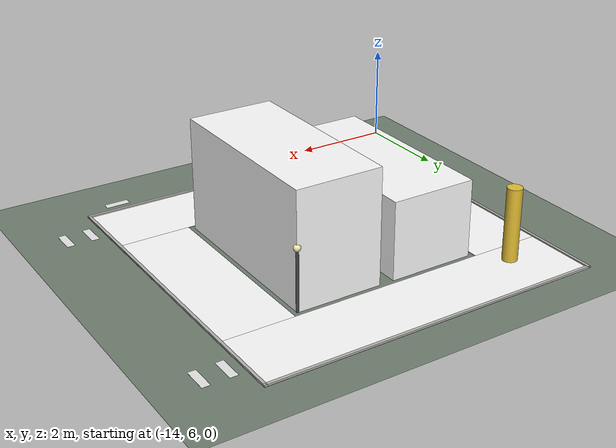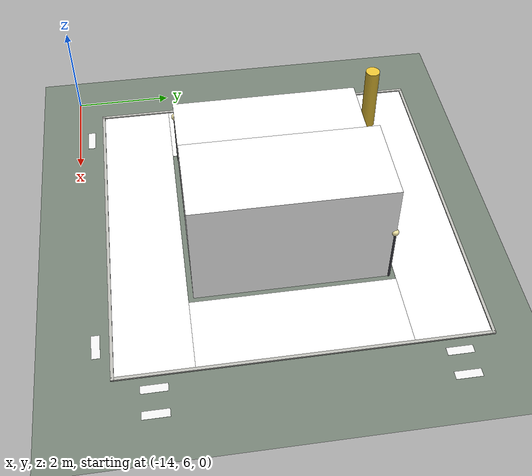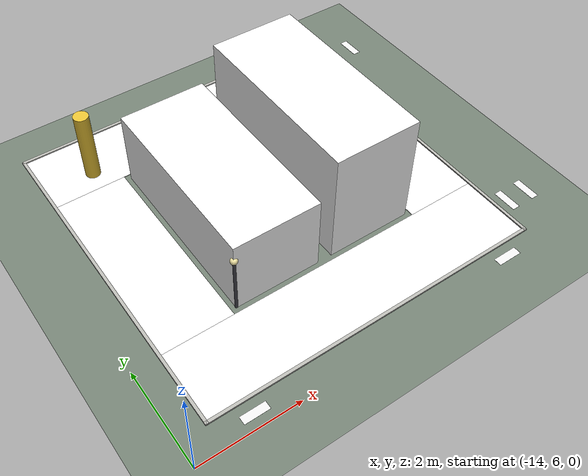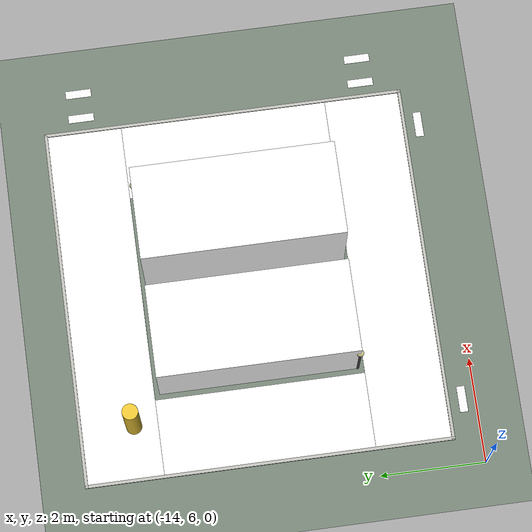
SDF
<sdf version="1.9">
 <world name="limo_city_blocks">
  <model name="ground_plane">
   <static>true</static>
   <link name="link">
    <collision name="collision">
     <geometry><plane><normal>0 0 1</normal><size>53 53</size></plane></geometry>
     <surface><friction><ode><mu>0.8</mu><mu2>0.8</mu2></ode></friction></surface>
    </collision>
    <visual name="visual">
     <geometry><plane><normal>0 0 1</normal><size>53 53</size></plane></geometry>
     <material><ambient>0.45 0.5 0.45 1</ambient><diffuse>0.45 0.5 0.45 1</diffuse></material>
    </visual>
   </link>
  </model>
  <model name="walk_s_0_2">
   <static>true</static>
   <pose>-10.000 7.250 0.008 0 0 0.000</pose>
   <link name="link">
    <visual name="visual">
     <geometry><box><size>7.000 1.500 0.012</size></box></geometry>
     <material>
      <ambient>1 1 1 1</ambient>
      <diffuse>1 1 1 1</diffuse>
      <pbr>
       <metal>
        <albedo_map>model://city_textures/paving.png</albedo_map>
        <roughness>0.85</roughness>
        <metalness>0.0</metalness>
       </metal>
      </pbr>
     </material>
    </visual>
   </link>
  </model>
  <model name="walk_n_0_2">
   <static>true</static>
   <pose>-10.000 12.750 0.008 0 0 0.000</pose>
   <link name="link">
    <visual name="visual">
     <geometry><box><size>7.000 1.500 0.012</size></box></geometry>
     <material>
      <ambient>1 1 1 1</ambient>
      <diffuse>1 1 1 1</diffuse>
      <pbr>
       <metal>
        <albedo_map>model://city_textures/paving.png</albedo_map>
        <roughness>0.85</roughness>
        <metalness>0.0</metalness>
       </metal>
      </pbr>
     </material>
    </visual>
   </link>
  </model>
  <model name="walk_w_0_2">
   <static>true</static>
   <pose>-12.750 10.000 0.008 0 0 0.000</pose>
   <link name="link">
    <visual name="visual">
     <geometry><box><size>1.500 4.000 0.012</size></box></geometry>
     <material>
      <ambient>1 1 1 1</ambient>
      <diffuse>1 1 1 1</diffuse>
      <pbr>
       <metal>
        <albedo_map>model://city_textures/paving.png</albedo_map>
        <roughness>0.85</roughness>
        <metalness>0.0</metalness>
       </metal>
      </pbr>
     </material>
    </visual>
   </link>
  </model>
  <model name="walk_e_0_2">
   <static>true</static>
   <pose>-7.250 10.000 0.008 0 0 0.000</pose>
   <link name="link">
    <visual name="visual">
     <geometry><box><size>1.500 4.000 0.012</size></box></geometry>
     <material>
      <ambient>1 1 1 1</ambient>
      <diffuse>1 1 1 1</diffuse>
      <pbr>
       <metal>
        <albedo_map>model://city_textures/paving.png</albedo_map>
        <roughness>0.85</roughness>
        <metalness>0.0</metalness>
       </metal>
      </pbr>
     </material>
    </visual>
   </link>
  </model>
  <model name="curb_s_0_2">
   <static>true</static>
   <pose>-10.000 6.530 0.020 0 0 0.000</pose>
   <link name="link">
    <visual name="visual">
     <geometry><box><size>7.000 0.060 0.040</size></box></geometry>
     <material><ambient>0.72 0.72 0.7 1</ambient><diffuse>0.72 0.72 0.7 1</diffuse></material>
    </visual>
   </link>
  </model>
  <model name="curb_n_0_2">
   <static>true</static>
   <pose>-10.000 13.470 0.020 0 0 0.000</pose>
   <link name="link">
    <visual name="visual">
     <geometry><box><size>7.000 0.060 0.040</size></box></geometry>
     <material><ambient>0.72 0.72 0.7 1</ambient><diffuse>0.72 0.72 0.7 1</diffuse></material>
    </visual>
   </link>
  </model>
  <model name="curb_w_0_2">
   <static>true</static>
   <pose>-13.470 10.000 0.020 0 0 0.000</pose>
   <link name="link">
    <visual name="visual">
     <geometry><box><size>0.060 7.000 0.040</size></box></geometry>
     <material><ambient>0.72 0.72 0.7 1</ambient><diffuse>0.72 0.72 0.7 1</diffuse></material>
    </visual>
   </link>
  </model>
  <model name="curb_e_0_2">
   <static>true</static>
   <pose>-6.530 10.000 0.020 0 0 0.000</pose>
   <link name="link">
    <visual name="visual">
     <geometry><box><size>0.060 7.000 0.040</size></box></geometry>
     <material><ambient>0.72 0.72 0.7 1</ambient><diffuse>0.72 0.72 0.7 1</diffuse></material>
    </visual>
   </link>
  </model>
  <model name="lamp_4">
   <static>true</static>
   <pose>-11.880 8.120 0 0 0 0</pose>
   <link name="link">
    <collision name="collision">
     <pose>0 0 0.6 0 0 0</pose>
     <geometry><cylinder><radius>0.03</radius><length>1.2</length></cylinder></geometry>
    </collision>
    <visual name="pole">
     <pose>0 0 0.6 0 0 0</pose>
     <geometry><cylinder><radius>0.03</radius><length>1.2</length></cylinder></geometry>
     <material><ambient>0.2 0.2 0.22 1</ambient><diffuse>0.25 0.25 0.28 1</diffuse></material>
    </visual>
    <visual name="head">
     <pose>0 0 1.25 0 0 0</pose>
     <geometry><sphere><radius>0.07</radius></sphere></geometry>
     <material>
      <ambient>0.9 0.85 0.6 1</ambient>
      <diffuse>0.95 0.9 0.65 1</diffuse>
      <emissive>0.5 0.45 0.25 1</emissive>
     </material>
    </visual>
   </link>
  </model>
  <model name="lamp_5">
   <static>true</static>
   <pose>-8.120 11.880 0 0 0 0</pose>
   <link name="link">
    <collision name="collision">
     <pose>0 0 0.6 0 0 0</pose>
     <geometry><cylinder><radius>0.03</radius><length>1.2</length></cylinder></geometry>
    </collision>
    <visual name="pole">
     <pose>0 0 0.6 0 0 0</pose>
     <geometry><cylinder><radius>0.03</radius><length>1.2</length></cylinder></geometry>
     <material><ambient>0.2 0.2 0.22 1</ambient><diffuse>0.25 0.25 0.28 1</diffuse></material>
    </visual>
    <visual name="head">
     <pose>0 0 1.25 0 0 0</pose>
     <geometry><sphere><radius>0.07</radius></sphere></geometry>
     <material>
      <ambient>0.9 0.85 0.6 1</ambient>
      <diffuse>0.95 0.9 0.65 1</diffuse>
      <emissive>0.5 0.45 0.25 1</emissive>
     </material>
    </visual>
   </link>
  </model>
  <model name="zebra_4_0">
   <static>true</static>
   <pose>-6.250 7.250 0.013 0 0 0.000</pose>
   <link name="link">
    <visual name="visual">
     <geometry><box><size>0.160 0.500 0.002</size></box></geometry>
     <material><ambient>0.92 0.92 0.92 1</ambient><diffuse>0.92 0.92 0.92 1</diffuse></material>
    </visual>
   </link>
  </model>
  <model name="zebra_4_1">
   <static>true</static>
   <pose>-5.750 7.250 0.013 0 0 0.000</pose>
   <link name="link">
    <visual name="visual">
     <geometry><box><size>0.160 0.500 0.002</size></box></geometry>
     <material><ambient>0.92 0.92 0.92 1</ambient><diffuse>0.92 0.92 0.92 1</diffuse></material>
    </visual>
   </link>
  </model>
  <model name="zebra_5_0">
   <static>true</static>
   <pose>-6.250 12.750 0.013 0 0 0.000</pose>
   <link name="link">
    <visual name="visual">
     <geometry><box><size>0.160 0.500 0.002</size></box></geometry>
     <material><ambient>0.92 0.92 0.92 1</ambient><diffuse>0.92 0.92 0.92 1</diffuse></material>
    </visual>
   </link>
  </model>
  <model name="zebra_5_1">
   <static>true</static>
   <pose>-5.750 12.750 0.013 0 0 0.000</pose>
   <link name="link">
    <visual name="visual">
     <geometry><box><size>0.160 0.500 0.002</size></box></geometry>
     <material><ambient>0.92 0.92 0.92 1</ambient><diffuse>0.92 0.92 0.92 1</diffuse></material>
    </visual>
   </link>
  </model>
  <model name="zebra_18_5">
   <static>true</static>
   <pose>-12.750 6.250 0.013 0 0 0.000</pose>
   <link name="link">
    <visual name="visual">
     <geometry><box><size>0.500 0.160 0.002</size></box></geometry>
     <material><ambient>0.92 0.92 0.92 1</ambient><diffuse>0.92 0.92 0.92 1</diffuse></material>
    </visual>
   </link>
  </model>
  <model name="zebra_19_5">
   <static>true</static>
   <pose>-7.250 6.250 0.013 0 0 0.000</pose>
   <link name="link">
    <visual name="visual">
     <geometry><box><size>0.500 0.160 0.002</size></box></geometry>
     <material><ambient>0.92 0.92 0.92 1</ambient><diffuse>0.92 0.92 0.92 1</diffuse></material>
    </visual>
   </link>
  </model>
  <model name="building_3">
   <static>true</static>
   <pose>-11.025 10.000 0.787 0 0 0.000</pose>
   <link name="link">
    <collision name="collision"><geometry><box><size>1.750 3.800 1.575</size></box></geometry></collision>
    <visual name="visual">
     <geometry><box><size>1.750 3.800 1.575</size></box></geometry>
     <material>
      <ambient>1 1 1 1</ambient>
      <diffuse>1 1 1 1</diffuse>
      <pbr>
       <metal>
        <albedo_map>model://city_textures/facade_3.png</albedo_map>
        <roughness>0.85</roughness>
        <metalness>0.0</metalness>
       </metal>
      </pbr>
     </material>
    </visual>
   </link>
  </model>
  <model name="building_4">
   <static>true</static>
   <pose>-8.975 10.000 1.168 0 0 0.000</pose>
   <link name="link">
    <collision name="collision"><geometry><box><size>1.750 3.800 2.336</size></box></geometry></collision>
    <visual name="visual">
     <geometry><box><size>1.750 3.800 2.336</size></box></geometry>
     <material>
      <ambient>1 1 1 1</ambient>
      <diffuse>1 1 1 1</diffuse>
      <pbr>
       <metal>
        <albedo_map>model://city_textures/facade_1.png</albedo_map>
        <roughness>0.85</roughness>
        <metalness>0.0</metalness>
       </metal>
      </pbr>
     </material>
    </visual>
   </link>
  </model>
  <model name="ped_4_loop">
   <pose>-12.450 12.450 0 0 0 0</pose>
   <link name="body">
    <kinematic>true</kinematic>
    <collision name="collision">
     <pose>0 0 0.75 0 0 0</pose>
     <geometry><cylinder><radius>0.15</radius><length>1.5</length></cylinder></geometry>
    </collision>
    <visual name="visual">
     <pose>0 0 0.75 0 0 0</pose>
     <geometry><cylinder><radius>0.15</radius><length>1.5</length></cylinder></geometry>
     <material><ambient>0.9 0.75 0.2 1</ambient><diffuse>0.9 0.75 0.2 1</diffuse></material>
    </visual>
   </link>
   <plugin filename="gz-sim-velocity-control-system" name="gz::sim::systems::VelocityControl"/>
   <plugin filename="gz-sim-pose-publisher-system" name="gz::sim::systems::PosePublisher">
    <publish_model_pose>true</publish_model_pose>
    <publish_link_pose>false</publish_link_pose>
    <publish_collision_pose>false</publish_collision_pose>
    <publish_visual_pose>false</publish_visual_pose>
    <publish_sensor_pose>false</publish_sensor_pose>
    <use_pose_vector_msg>false</use_pose_vector_msg>
    <update_frequency>10</update_frequency>
   </plugin>
  </model>
 </world>
</sdf>
